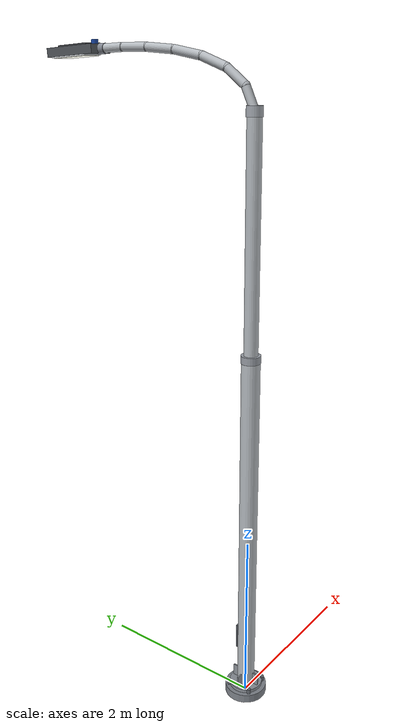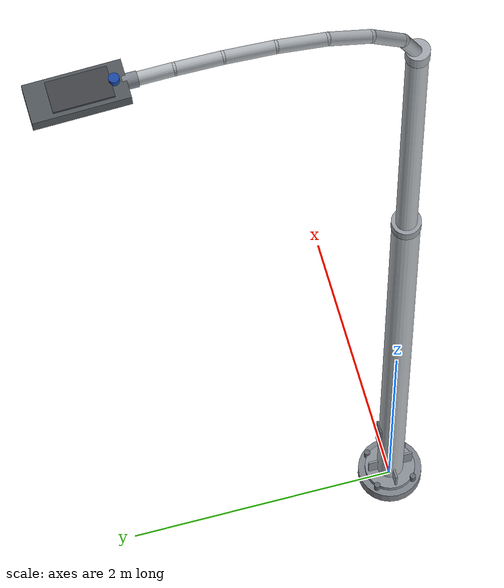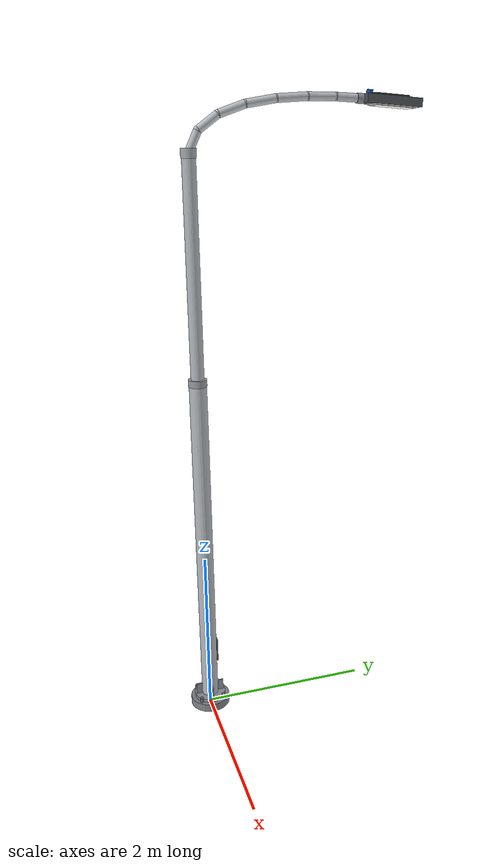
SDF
<?xml version="1.0" ?>
<sdf version="1.8">
  <model name="street_light">
    <static>true</static>
    <link name="light_pole_link">

      <!-- 物理碰撞剛體 (僅垂直立桿圓柱) -->
      <collision name="pole_col">
        <pose>0 0 3.5 0 0 0</pose>
        <geometry><cylinder><radius>0.12</radius><length>7.0</length></cylinder></geometry>
      </collision>

      <!-- 視覺：圓形地腳法蘭盤基座 (Flanged Base Plinth: R=0.24m) -->
      <visual name="base_plinth">
        <pose>0 0 0.05 0 0 0</pose>
        <geometry><cylinder><radius>0.24</radius><length>0.10</length></cylinder></geometry>
        <material><ambient>0.40 0.42 0.45 1</ambient><diffuse>0.50 0.52 0.55 1</diffuse></material>
      </visual>

      <!-- 視覺：地腳法蘭盤上階環 (Flange Collar Ring) -->
      <visual name="base_flange_ring">
        <pose>0 0 0.12 0 0 0</pose>
        <geometry><cylinder><radius>0.19</radius><length>0.04</length></cylinder></geometry>
        <material><ambient>0.45 0.47 0.50 1</ambient><diffuse>0.55 0.57 0.60 1</diffuse></material>
      </visual>

      <!-- 視覺：4 顆高強度固定螺栓 (Anchor Bolt Nuts) -->
      <visual name="bolt_1">
        <pose>0.14 0.14 0.13 0 0 0</pose>
        <geometry><cylinder><radius>0.022</radius><length>0.06</length></cylinder></geometry>
        <material><ambient>0.30 0.32 0.35 1</ambient><diffuse>0.40 0.42 0.45 1</diffuse></material>
      </visual>
      <visual name="bolt_2">
        <pose>-0.14 0.14 0.13 0 0 0</pose>
        <geometry><cylinder><radius>0.022</radius><length>0.06</length></cylinder></geometry>
        <material><ambient>0.30 0.32 0.35 1</ambient><diffuse>0.40 0.42 0.45 1</diffuse></material>
      </visual>
      <visual name="bolt_3">
        <pose>0.14 -0.14 0.13 0 0 0</pose>
        <geometry><cylinder><radius>0.022</radius><length>0.06</length></cylinder></geometry>
        <material><ambient>0.30 0.32 0.35 1</ambient><diffuse>0.40 0.42 0.45 1</diffuse></material>
      </visual>
      <visual name="bolt_4">
        <pose>-0.14 -0.14 0.13 0 0 0</pose>
        <geometry><cylinder><radius>0.022</radius><length>0.06</length></cylinder></geometry>
        <material><ambient>0.30 0.32 0.35 1</ambient><diffuse>0.40 0.42 0.45 1</diffuse></material>
      </visual>

      <!-- 視覺：4 片底座三角加強肋板 (Base Stiffener Gussets) -->
      <visual name="gusset_x_pos">
        <pose>0.13 0 0.20 0 0 0</pose>
        <geometry><box><size>0.08 0.015 0.16</size></box></geometry>
        <material><ambient>0.45 0.47 0.50 1</ambient><diffuse>0.55 0.57 0.60 1</diffuse></material>
      </visual>
      <visual name="gusset_x_neg">
        <pose>-0.13 0 0.20 0 0 0</pose>
        <geometry><box><size>0.08 0.015 0.16</size></box></geometry>
        <material><ambient>0.45 0.47 0.50 1</ambient><diffuse>0.55 0.57 0.60 1</diffuse></material>
      </visual>
      <visual name="gusset_y_pos">
        <pose>0 0.13 0.20 0 0 0</pose>
        <geometry><box><size>0.015 0.08 0.16</size></box></geometry>
        <material><ambient>0.45 0.47 0.50 1</ambient><diffuse>0.55 0.57 0.60 1</diffuse></material>
      </visual>
      <visual name="gusset_y_neg">
        <pose>0 -0.13 0.20 0 0 0</pose>
        <geometry><box><size>0.015 0.08 0.16</size></box></geometry>
        <material><ambient>0.45 0.47 0.50 1</ambient><diffuse>0.55 0.57 0.60 1</diffuse></material>
      </visual>

      <!-- 視覺：熱浸鍍鋅下段鋼管立桿 (Lower Pole Shaft: Z=0.10~4.20m, R=0.10m) -->
      <visual name="pole_shaft_lower">
        <pose>0 0 2.15 0 0 0</pose>
        <geometry><cylinder><radius>0.10</radius><length>4.10</length></cylinder></geometry>
        <material><ambient>0.62 0.64 0.66 1</ambient><diffuse>0.72 0.74 0.76 1</diffuse></material>
      </visual>

      <!-- 視覺：立桿底部台電/市府維修孔蓋 (Handhole Cover) -->
      <visual name="handhole">
        <pose>0 0.102 0.75 0 0 0</pose>
        <geometry><box><size>0.10 0.015 0.30</size></box></geometry>
        <material><ambient>0.32 0.34 0.36 1</ambient><diffuse>0.40 0.42 0.45 1</diffuse></material>
      </visual>

      <!-- 視覺：中段漸縮接合環 (Pole Transition Reducer Collar) -->
      <visual name="pole_collar">
        <pose>0 0 4.20 0 0 0</pose>
        <geometry><cylinder><radius>0.105</radius><length>0.08</length></cylinder></geometry>
        <material><ambient>0.50 0.52 0.55 1</ambient><diffuse>0.60 0.62 0.65 1</diffuse></material>
      </visual>

      <!-- 視覺：熱浸鍍鋅上段漸縮鋼管立桿 (Upper Pole Shaft: Z=4.20~6.60m, R=0.075m) -->
      <visual name="pole_shaft_upper">
        <pose>0 0 5.40 0 0 0</pose>
        <geometry><cylinder><radius>0.075</radius><length>2.40</length></cylinder></geometry>
        <material><ambient>0.62 0.64 0.66 1</ambient><diffuse>0.72 0.74 0.76 1</diffuse></material>
      </visual>

      <!-- 視覺：桿頂端蓋與懸臂底座 (Pole Top Cap & Arm Base Hub) -->
      <visual name="pole_top_cap">
        <pose>0 0 6.60 0 0 0</pose>
        <geometry><cylinder><radius>0.082</radius><length>0.10</length></cylinder></geometry>
        <material><ambient>0.55 0.57 0.60 1</ambient><diffuse>0.65 0.67 0.70 1</diffuse></material>
      </visual>

      <!-- 視覺：流暢弧形天鵝頸懸臂 (Swan-Neck Davit Outreach Arm: 延伸 1.85m 至車道上方) -->
      <!-- 懸臂弧形段 1 -->
      <visual name="arm_seg_1">
        <pose>0 0.0522 6.7094 -0.44474 0 0</pose>
        <geometry><cylinder><radius>0.045</radius><length>0.2425</length></cylinder></geometry>
        <material><ambient>0.62 0.64 0.66 1</ambient><diffuse>0.72 0.74 0.76 1</diffuse></material>
      </visual>
      <!-- 懸臂接頭圓球 1 -->
      <visual name="arm_joint_1">
        <pose>0 0.1043 6.8189 0 0 0</pose>
        <geometry><sphere><radius>0.0459</radius></sphere></geometry>
        <material><ambient>0.62 0.64 0.66 1</ambient><diffuse>0.72 0.74 0.76 1</diffuse></material>
      </visual>

      <!-- 懸臂弧形段 2 -->
      <visual name="arm_seg_2">
        <pose>0 0.2113 6.8963 -0.94442 0 0</pose>
        <geometry><cylinder><radius>0.045</radius><length>0.2642</length></cylinder></geometry>
        <material><ambient>0.62 0.64 0.66 1</ambient><diffuse>0.72 0.74 0.76 1</diffuse></material>
      </visual>
      <!-- 懸臂接頭圓球 2 -->
      <visual name="arm_joint_2">
        <pose>0 0.3184 6.9738 0 0 0</pose>
        <geometry><sphere><radius>0.0459</radius></sphere></geometry>
        <material><ambient>0.62 0.64 0.66 1</ambient><diffuse>0.72 0.74 0.76 1</diffuse></material>
      </visual>

      <!-- 懸臂弧形段 3 -->
      <visual name="arm_seg_3">
        <pose>0 0.4634 7.0244 -1.23487 0 0</pose>
        <geometry><cylinder><radius>0.045</radius><length>0.3071</length></cylinder></geometry>
        <material><ambient>0.62 0.64 0.66 1</ambient><diffuse>0.72 0.74 0.76 1</diffuse></material>
      </visual>
      <!-- 懸臂接頭圓球 3 -->
      <visual name="arm_joint_3">
        <pose>0 0.6083 7.0750 0 0 0</pose>
        <geometry><sphere><radius>0.0459</radius></sphere></geometry>
        <material><ambient>0.62 0.64 0.66 1</ambient><diffuse>0.72 0.74 0.76 1</diffuse></material>
      </visual>

      <!-- 懸臂弧形段 4 -->
      <visual name="arm_seg_4">
        <pose>0 0.7744 7.1040 -1.39808 0 0</pose>
        <geometry><cylinder><radius>0.045</radius><length>0.3370</length></cylinder></geometry>
        <material><ambient>0.62 0.64 0.66 1</ambient><diffuse>0.72 0.74 0.76 1</diffuse></material>
      </visual>
      <!-- 懸臂接頭圓球 4 -->
      <visual name="arm_joint_4">
        <pose>0 0.9404 7.1329 0 0 0</pose>
        <geometry><sphere><radius>0.0459</radius></sphere></geometry>
        <material><ambient>0.62 0.64 0.66 1</ambient><diffuse>0.72 0.74 0.76 1</diffuse></material>
      </visual>

      <!-- 懸臂弧形段 5 -->
      <visual name="arm_seg_5">
        <pose>0 1.1104 7.1454 -1.49767 0 0</pose>
        <geometry><cylinder><radius>0.045</radius><length>0.3411</length></cylinder></geometry>
        <material><ambient>0.62 0.64 0.66 1</ambient><diffuse>0.72 0.74 0.76 1</diffuse></material>
      </visual>
      <!-- 懸臂接頭圓球 5 -->
      <visual name="arm_joint_5">
        <pose>0 1.2805 7.1579 0 0 0</pose>
        <geometry><sphere><radius>0.0459</radius></sphere></geometry>
        <material><ambient>0.62 0.64 0.66 1</ambient><diffuse>0.72 0.74 0.76 1</diffuse></material>
      </visual>

      <!-- 懸臂弧形段 6 -->
      <visual name="arm_seg_6">
        <pose>0 1.4378 7.1590 -1.56365 0 0</pose>
        <geometry><cylinder><radius>0.045</radius><length>0.3145</length></cylinder></geometry>
        <material><ambient>0.62 0.64 0.66 1</ambient><diffuse>0.72 0.74 0.76 1</diffuse></material>
      </visual>
      <!-- 懸臂接頭圓球 6 -->
      <visual name="arm_joint_6">
        <pose>0 1.5950 7.1601 0 0 0</pose>
        <geometry><sphere><radius>0.0459</radius></sphere></geometry>
        <material><ambient>0.62 0.64 0.66 1</ambient><diffuse>0.72 0.74 0.76 1</diffuse></material>
      </visual>

      <!-- 懸臂弧形段 7 (末端平緩段) -->
      <visual name="arm_seg_7">
        <pose>0 1.7225 7.1551 -1.61039 0 0</pose>
        <geometry><cylinder><radius>0.045</radius><length>0.2552</length></cylinder></geometry>
        <material><ambient>0.62 0.64 0.66 1</ambient><diffuse>0.72 0.74 0.76 1</diffuse></material>
      </visual>

      <!-- 視覺：燈具固定套管卡箍 (Slip-Fitter Tenon Adapter) -->
      <visual name="luminaire_tenon_adapter">
        <pose>0 1.88 7.147 -1.61039 0 0</pose>
        <geometry><cylinder><radius>0.052</radius><length>0.10</length></cylinder></geometry>
        <material><ambient>0.45 0.47 0.50 1</ambient><diffuse>0.52 0.54 0.58 1</diffuse></material>
      </visual>

      <!-- 視覺：流線型低風阻壓鑄鋁合金 LED 燈頭外殼 (Aerodynamic LED Luminaire Housing) -->
      <visual name="luminaire_housing">
        <pose>0 2.22 7.13 -0.06 0 0</pose>
        <geometry><box><size>0.28 0.64 0.09</size></box></geometry>
        <material><ambient>0.24 0.25 0.27 1</ambient><diffuse>0.32 0.34 0.36 1</diffuse></material>
      </visual>

      <!-- 視覺：燈具背部散熱鰭片飾板 (Die-Cast Cooling Fins) -->
      <visual name="luminaire_cooling_fins">
        <pose>0 2.20 7.18 -0.06 0 0</pose>
        <geometry><box><size>0.22 0.40 0.025</size></box></geometry>
        <material><ambient>0.18 0.19 0.21 1</ambient><diffuse>0.25 0.26 0.28 1</diffuse></material>
      </visual>

      <!-- 視覺：頂部 NEMA 藍色光敏日照感應器 (Photocell Receptacle) -->
      <visual name="photocell_sensor">
        <pose>0 1.98 7.21 -0.06 0 0</pose>
        <geometry><cylinder><radius>0.035</radius><length>0.05</length></cylinder></geometry>
        <material><ambient>0.06 0.16 0.38 1</ambient><diffuse>0.10 0.28 0.65 1</diffuse></material>
      </visual>

      <!-- 視覺：微棱鏡光學透鏡防護罩 (Optical Acrylic Lens Cover) -->
      <visual name="led_lens_cover">
        <pose>0 2.25 7.08 -0.06 0 0</pose>
        <geometry><box><size>0.24 0.48 0.015</size></box></geometry>
        <material><ambient>0.85 0.88 0.90 1</ambient><diffuse>0.92 0.94 0.96 1</diffuse></material>
      </visual>

      <!-- 視覺：高亮度 5000K LED 自發光矩陣 (Daylight Emissive LED Matrix Panel) -->
      <visual name="led_lens_emissive">
        <pose>0 2.25 7.07 -0.06 0 0</pose>
        <geometry><box><size>0.22 0.44 0.006</size></box></geometry>
        <material>
          <ambient>1.0 1.0 0.95 1</ambient>
          <diffuse>1.0 1.0 0.95 1</diffuse>
          <emissive>0.95 0.95 0.90 1</emissive>
        </material>
      </visual>

    </link>
  </model>
</sdf>
